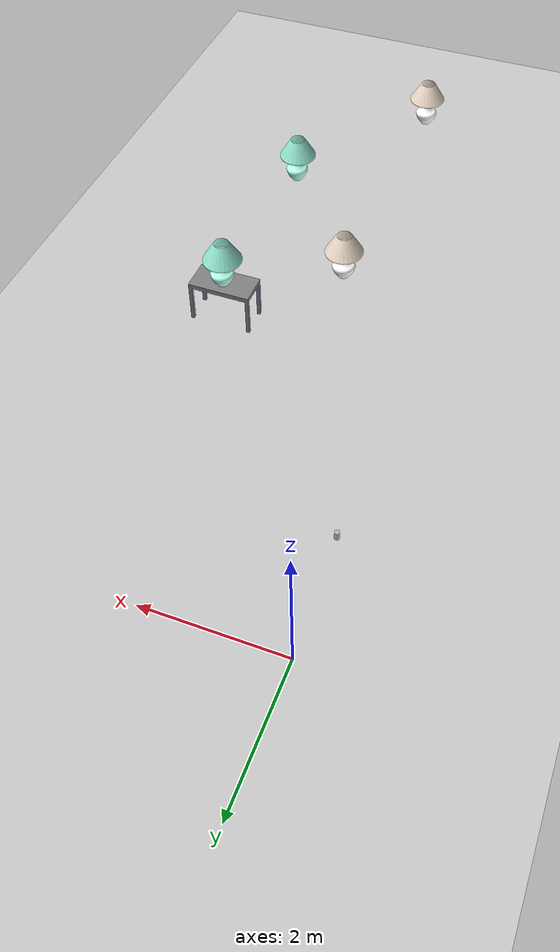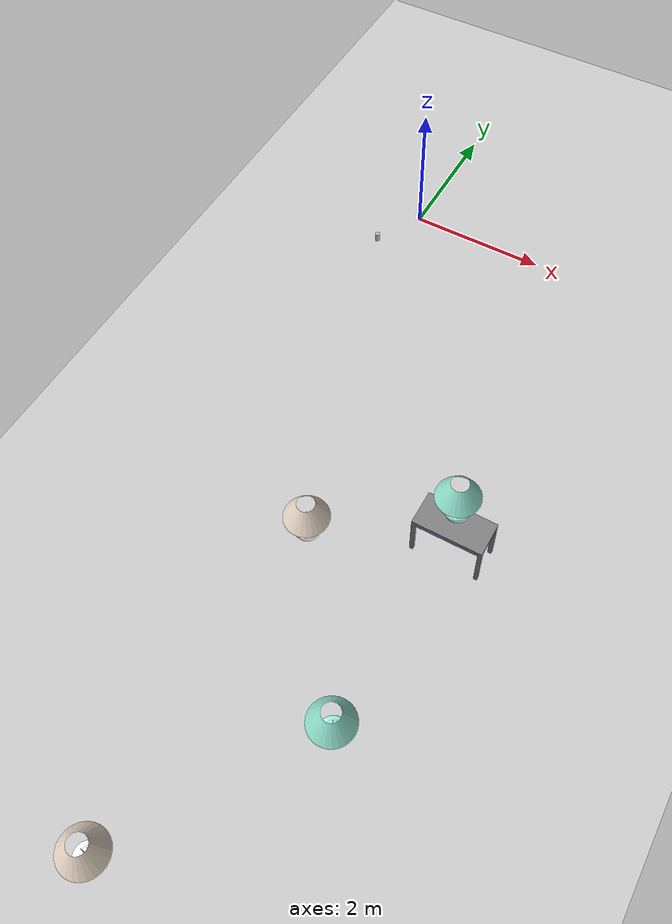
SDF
<sdf version="1.5">
 <world name="default">
  <light name="sun" type="directional">
   <pose>0 0 10 0 -0 0</pose>
   <diffuse>0.8 0.8 0.8 1</diffuse>
   <specular>0.2 0.2 0.2 1</specular>
   <attenuation>
    <range>1000</range>
    <constant>0.9</constant>
    <linear>0.01</linear>
    <quadratic>0.001</quadratic>
   </attenuation>
   <direction>0 0.5 -0.9</direction>
  </light>
  <light name="point_light" type="point">
   <pose>0 -0.377195 6.59868 0 -0 0</pose>
   <diffuse>0.784314 0.784314 0.784314 1</diffuse>
   <specular>0.0980392 0.0980392 0.0980392 1</specular>
   <attenuation>
    <range>50</range>
    <constant>0.8</constant>
    <linear>0</linear>
    <quadratic>0.001</quadratic>
   </attenuation>
   <cast_shadows>0</cast_shadows>
   <direction>0 0 -1</direction>
  </light>
  <include><uri>model://ground_plane</uri></include>
  <include><pose>3 -8.0 0.5 0 0 0</pose><uri>model://lamp_table_small</uri></include>
  <include><pose>3 -5 0 0 0 0</pose><uri>model://table_dining</uri></include>
  <include><pose>3 -5 0.7 0 0 0</pose><uri>model://lamp_table_small</uri></include>
  <include><pose>1.5 -10.3 0.5 0 0 0</pose><uri>model://lamp_table_large</uri></include>
  <include><pose>1.5 -6 0.5 0 0 0</pose><uri>model://lamp_table_large</uri></include>
  <include><pose>-0.06 -1.3 0.75 0 0 0</pose><uri>model://beer</uri></include>
 </world>
</sdf>

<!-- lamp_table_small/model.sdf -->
<sdf version='1.6'>
  <model name='lamp_table_small'>
    <link name='link_20'>
      <pose frame=''>0 0 0 0 -0 0</pose>
     <visual name='visual'>
        <pose frame=''>0 0 0 0 -0 0</pose>
        <geometry>
          <mesh>
            <uri>model://lamp_table_small/meshes/lamp_base.dae</uri>
            <scale>1 1 1</scale>
          </mesh>
        </geometry>
        <material>
          <lighting>1</lighting>
             <ambient>0.6980 0.9843 0.9137 1</ambient>
          <diffuse>0.6980 0.9843 0.9137 1</diffuse>
          <specular>0.01 0.01 0.01 1</specular>
          <emissive>0 0 0 1</emissive>
          <shader type='vertex'>
            <normal_map>__default__</normal_map>
          </shader>
        </material>
        <cast_shadows>1</cast_shadows>
        <transparency>0</transparency>
      </visual>
      <collision name='collision'>
        <laser_retro>0</laser_retro>
        <max_contacts>10</max_contacts>
        <pose frame=''>0 0 0 0 -0 0</pose>
        <geometry>
          <mesh>
            <uri>model://lamp_table_small/meshes/lamp_base.dae</uri>
            <scale>1 1 1</scale>
          </mesh>
        </geometry>

      </collision>
    </link>
    <link name='link_21'>
      <pose frame=''>0 0 0 0 -0 0</pose>

      <visual name='visual'>
        <pose frame=''>0 0 0 0 -0 0</pose>
        <geometry>
          <mesh>
            <uri>model://lamp_table_small/meshes/lamp_head.dae</uri>
            <scale>1 1 1</scale>
          </mesh>
        </geometry>
        <material>
          <lighting>1</lighting>
          <ambient>0.5960 0.9254 0.8431 1</ambient>
          <diffuse>0.5960 0.9254 0.8431 1</diffuse>
          <specular>0.01 0.01 0.01 1</specular>
          <emissive>0 0 0 1</emissive>
          <shader type='vertex'>
            <normal_map>__default__</normal_map>
          </shader>
        </material>
        <cast_shadows>1</cast_shadows>
        <transparency>0</transparency>
      </visual>
      <collision name='collision'>
        <laser_retro>0</laser_retro>
        <max_contacts>10</max_contacts>
        <pose frame=''>0 0 0 0 -0 0</pose>
        <geometry>
          <mesh>
            <uri>model://lamp_table_small/meshes/lamp_head.dae</uri>
            <scale>1 1 1</scale>
          </mesh>
        </geometry>

      </collision>
    </link>
    <static>1</static>
    <allow_auto_disable>1</allow_auto_disable>
  </model>
</sdf>

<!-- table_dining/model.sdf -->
<sdf version='1.6'>
  <model name='table_dining'>
    <link name='link_24'>
      <pose frame=''>0 0 0 0 -0 0</pose>
       <visual name='visual'>
        <pose frame=''>0 0 0 0 -0 0</pose>
        <geometry>
          <mesh>
            <uri>model://table_dining/meshes/table2.dae</uri>
            <scale>1 1 1</scale>
          </mesh>
        </geometry>
        <material>
          <script>
            <uri>model://table_dining/materials/scripts</uri>
            <uri>model://table_dining/materials/textures</uri>
            <name>dining_table</name>
          </script>
        </material>
        <cast_shadows>1</cast_shadows>
        <transparency>0</transparency>
      </visual>
      <collision name='collision'>
        <laser_retro>0</laser_retro>
        <max_contacts>10</max_contacts>
        <pose frame=''>0 0 0 0 -0 0</pose>
        <geometry>
          <mesh>
            <uri>model://table_dining/meshes/table2.dae</uri>
            <scale>1 1 1</scale>
          </mesh>
        </geometry>
       </collision>
    </link>
    <static>1</static>
    <allow_auto_disable>1</allow_auto_disable>
  </model>
</sdf>

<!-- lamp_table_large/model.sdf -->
<sdf version='1.6'>
  <model name='lamp_table_large'>
    <link name='link_20'>
      <pose frame=''>-0.009128 0.000859 0 0 -0 0</pose>
       <visual name='visual'>
        <pose frame=''>0 0 0 0 -0 0</pose>
        <geometry>
          <mesh>
            <uri>model://lamp_table_large/meshes/lamp_base.dae</uri>
            <scale>1 1 1</scale>
          </mesh>
        </geometry>
        <material>
          <lighting>1</lighting>
              <ambient>1 1 1 1</ambient>
          <diffuse>1 1 1 1</diffuse>
          <specular>0.01 0.01 0.01 1</specular>
          <emissive>0 0 0 1</emissive>
        </material>
        <cast_shadows>1</cast_shadows>
        <transparency>0</transparency>
      </visual>
      <collision name='collision'>
        <laser_retro>0</laser_retro>
        <max_contacts>10</max_contacts>
        <pose frame=''>0 0 0 0 -0 0</pose>
        <geometry>
          <mesh>
            <uri>model://lamp_table_large/meshes/lamp_base.dae</uri>
            <scale>1 1 1</scale>
          </mesh>
        </geometry>
         </collision>
    </link>
    <link name='link_21'>
      <pose frame=''>0.009129 -0.000859 0 0 -0 0</pose>
        <visual name='visual'>
        <pose frame=''>0 0 0 0 -0 0</pose>
        <geometry>
          <mesh>
            <uri>model://lamp_table_large/meshes/lamp_head.dae</uri>
            <scale>1 1 1</scale>
          </mesh>
        </geometry>
        <material>
          <lighting>1</lighting>
          <ambient>0.9568 0.8862 0.8156 1</ambient>
          <diffuse>0.9568 0.8862 0.8156 1</diffuse>
          <specular>0.01 0.01 0.01 1</specular>
          <emissive>0 0 0 1</emissive>
        </material>
        <cast_shadows>1</cast_shadows>
        <transparency>0</transparency>
      </visual>
      <collision name='collision'>
        <laser_retro>0</laser_retro>
        <max_contacts>10</max_contacts>
        <pose frame=''>0 0 0 0 -0 0</pose>
        <geometry>
          <mesh>
            <uri>model://lamp_table_large/meshes/lamp_head.dae</uri>
            <scale>1 1 1</scale>
          </mesh>
        </geometry>
       </collision>
    </link>
    <static>1</static>
    <allow_auto_disable>1</allow_auto_disable>
  </model>
</sdf>

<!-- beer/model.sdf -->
<sdf version='1.4'>
  <model name="beer">
    <link name='link'>
      <pose>0 0 0 0 0 0</pose>
      <inertial>
        <mass>0.390</mass>
        <inertia>
          <ixx>0.00058</ixx>
          <ixy>0</ixy>
          <ixz>0</ixz>
          <iyy>0.00058</iyy>
          <iyz>0</iyz>
          <izz>0.00025</izz>
        </inertia>
      </inertial>
      <collision name='collision'>
        <geometry>
          <cylinder>
            <radius>0.03500</radius>
            <length>0.12000</length>
          </cylinder>
        </geometry>
      </collision>

      <visual name='visual'>
        <geometry>
          <cylinder>
            <radius>0.03500</radius>
            <length>0.12000</length>
          </cylinder>
        </geometry>

        <material>
          <script>
            <uri>model://beer/materials/scripts</uri>
            <uri>model://beer/materials/textures</uri>
            <name>Beer/Diffuse</name>
          </script>
        </material>
      </visual>
    </link>
  </model>
</sdf>
